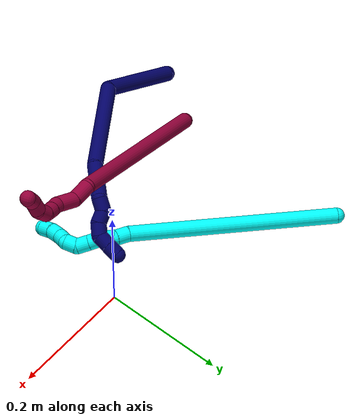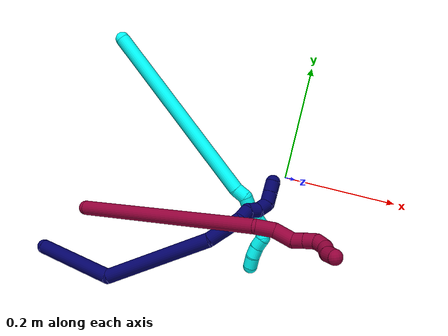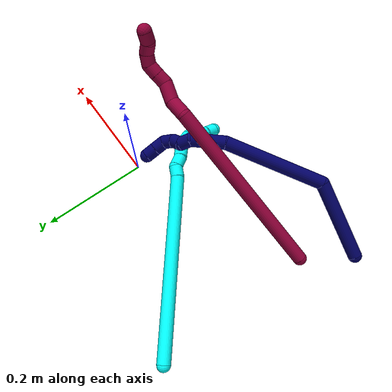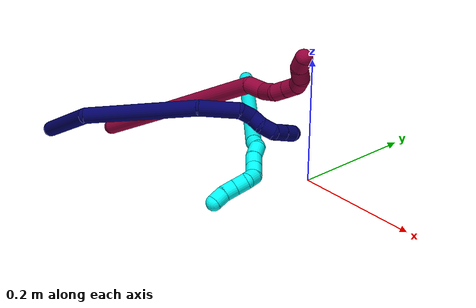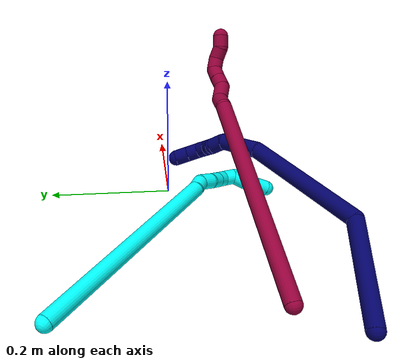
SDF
<sdf version="1.7">
 <world name="default">
  <model name="3">
   <static>0</static>
   <link name="3">
    <collision name="collision-cylinder-e_1_1_4">
     <pose>0.004202 -0.043896 0.161614 0.265214 0.025087 0.003346</pose>
     <geometry><cylinder><radius>0.0125</radius><length>0.335045</length></cylinder></geometry>
     <surface>
      <friction><ode><mu>1.16</mu><mu2>1.16</mu2><slip1>0</slip1><slip2>0</slip2></ode></friction>
      <contact><ode><kp>1e+06</kp><kd>1</kd><max_vel>0</max_vel><min_depth>0.001</min_depth></ode></contact>
     </surface>
    </collision>
    <visual name="visual-cylinder-e_1_1_4">
     <pose>0.004202 -0.043896 0.161614 0.265214 0.025087 0.003346</pose>
     <geometry><cylinder><radius>0.0125</radius><length>0.335045</length></cylinder></geometry>
     <material><ambient>0.003922 1 0.996078 1</ambient></material>
    </visual>
    <collision name="collision-cylinder-e_2_4_5">
     <pose>0.009357 -0.088173 0.33351 0.036997 0.092378 0.00171</pose>
     <geometry><cylinder><radius>0.0125</radius><length>0.020666</length></cylinder></geometry>
     <surface>
      <friction><ode><mu>1.16</mu><mu2>1.16</mu2><slip1>0</slip1><slip2>0</slip2></ode></friction>
      <contact><ode><kp>1e+06</kp><kd>1</kd><max_vel>0</max_vel><min_depth>0.001</min_depth></ode></contact>
     </surface>
    </collision>
    <visual name="visual-cylinder-e_2_4_5">
     <pose>0.009357 -0.088173 0.33351 0.036997 0.092378 0.00171</pose>
     <geometry><cylinder><radius>0.0125</radius><length>0.020666</length></cylinder></geometry>
     <material><ambient>0.003922 1 0.996078 1</ambient></material>
    </visual>
    <collision name="collision-cylinder-e_3_5_6">
     <pose>0.013859 -0.095132 0.353095 0.615528 0.301919 0.09663</pose>
     <geometry><cylinder><radius>0.0125</radius><length>0.023866</length></cylinder></geometry>
     <surface>
      <friction><ode><mu>1.16</mu><mu2>1.16</mu2><slip1>0</slip1><slip2>0</slip2></ode></friction>
      <contact><ode><kp>1e+06</kp><kd>1</kd><max_vel>0</max_vel><min_depth>0.001</min_depth></ode></contact>
     </surface>
    </collision>
    <visual name="visual-cylinder-e_3_5_6">
     <pose>0.013859 -0.095132 0.353095 0.615528 0.301919 0.09663</pose>
     <geometry><cylinder><radius>0.0125</radius><length>0.023866</length></cylinder></geometry>
     <material><ambient>0.003922 1 0.996078 1</ambient></material>
    </visual>
    <collision name="collision-cylinder-e_4_6_7">
     <pose>0.02161 -0.104902 0.371054 0.353176 0.427443 0.07742</pose>
     <geometry><cylinder><radius>0.0125</radius><length>0.020277</length></cylinder></geometry>
     <surface>
      <friction><ode><mu>1.16</mu><mu2>1.16</mu2><slip1>0</slip1><slip2>0</slip2></ode></friction>
      <contact><ode><kp>1e+06</kp><kd>1</kd><max_vel>0</max_vel><min_depth>0.001</min_depth></ode></contact>
     </surface>
    </collision>
    <visual name="visual-cylinder-e_4_6_7">
     <pose>0.02161 -0.104902 0.371054 0.353176 0.427443 0.07742</pose>
     <geometry><cylinder><radius>0.0125</radius><length>0.020277</length></cylinder></geometry>
     <material><ambient>0.003922 1 0.996078 1</ambient></material>
    </visual>
    <collision name="collision-cylinder-e_5_7_8">
     <pose>0.029818 -0.111386 0.388313 0.365614 0.410133 0.076865</pose>
     <geometry><cylinder><radius>0.0125</radius><length>0.020087</length></cylinder></geometry>
     <surface>
      <friction><ode><mu>1.16</mu><mu2>1.16</mu2><slip1>0</slip1><slip2>0</slip2></ode></friction>
      <contact><ode><kp>1e+06</kp><kd>1</kd><max_vel>0</max_vel><min_depth>0.001</min_depth></ode></contact>
     </surface>
    </collision>
    <visual name="visual-cylinder-e_5_7_8">
     <pose>0.029818 -0.111386 0.388313 0.365614 0.410133 0.076865</pose>
     <geometry><cylinder><radius>0.0125</radius><length>0.020087</length></cylinder></geometry>
     <material><ambient>0.003922 1 0.996078 1</ambient></material>
    </visual>
    <collision name="collision-cylinder-e_6_8_9">
     <pose>0.033579 -0.122455 0.403207 0.89043 -0.024336 -0.011613</pose>
     <geometry><cylinder><radius>0.0125</radius><length>0.020013</length></cylinder></geometry>
     <surface>
      <friction><ode><mu>1.16</mu><mu2>1.16</mu2><slip1>0</slip1><slip2>0</slip2></ode></friction>
      <contact><ode><kp>1e+06</kp><kd>1</kd><max_vel>0</max_vel><min_depth>0.001</min_depth></ode></contact>
     </surface>
    </collision>
    <visual name="visual-cylinder-e_6_8_9">
     <pose>0.033579 -0.122455 0.403207 0.89043 -0.024336 -0.011613</pose>
     <geometry><cylinder><radius>0.0125</radius><length>0.020013</length></cylinder></geometry>
     <material><ambient>0.003922 1 0.996078 1</ambient></material>
    </visual>
    <collision name="collision-cylinder-e_7_9_10">
     <pose>0.035977 -0.139899 0.409479 1.57296 0.266765 0.267335</pose>
     <geometry><cylinder><radius>0.0125</radius><length>0.020044</length></cylinder></geometry>
     <surface>
      <friction><ode><mu>1.16</mu><mu2>1.16</mu2><slip1>0</slip1><slip2>0</slip2></ode></friction>
      <contact><ode><kp>1e+06</kp><kd>1</kd><max_vel>0</max_vel><min_depth>0.001</min_depth></ode></contact>
     </surface>
    </collision>
    <visual name="visual-cylinder-e_7_9_10">
     <pose>0.035977 -0.139899 0.409479 1.57296 0.266765 0.267335</pose>
     <geometry><cylinder><radius>0.0125</radius><length>0.020044</length></cylinder></geometry>
     <material><ambient>0.003922 1 0.996078 1</ambient></material>
    </visual>
    <collision name="collision-cylinder-e_8_10_11">
     <pose>0.040339 -0.159169 0.411658 1.34562 0.172809 0.137826</pose>
     <geometry><cylinder><radius>0.0125</radius><length>0.02</length></cylinder></geometry>
     <surface>
      <friction><ode><mu>1.16</mu><mu2>1.16</mu2><slip1>0</slip1><slip2>0</slip2></ode></friction>
      <contact><ode><kp>1e+06</kp><kd>1</kd><max_vel>0</max_vel><min_depth>0.001</min_depth></ode></contact>
     </surface>
    </collision>
    <visual name="visual-cylinder-e_8_10_11">
     <pose>0.040339 -0.159169 0.411658 1.34562 0.172809 0.137826</pose>
     <geometry><cylinder><radius>0.0125</radius><length>0.02</length></cylinder></geometry>
     <material><ambient>0.003922 1 0.996078 1</ambient></material>
    </visual>
    <collision name="collision-cylinder-e_9_11_2">
     <pose>0.045454 -0.177603 0.417097 1.2192 0.346381 0.243128</pose>
     <geometry><cylinder><radius>0.0125</radius><length>0.020001</length></cylinder></geometry>
     <surface>
      <friction><ode><mu>1.16</mu><mu2>1.16</mu2><slip1>0</slip1><slip2>0</slip2></ode></friction>
      <contact><ode><kp>1e+06</kp><kd>1</kd><max_vel>0</max_vel><min_depth>0.001</min_depth></ode></contact>
     </surface>
    </collision>
    <visual name="visual-cylinder-e_9_11_2">
     <pose>0.045454 -0.177603 0.417097 1.2192 0.346381 0.243128</pose>
     <geometry><cylinder><radius>0.0125</radius><length>0.020001</length></cylinder></geometry>
     <material><ambient>0.003922 1 0.996078 1</ambient></material>
    </visual>
    <collision name="collision-sphere-2">
     <pose>0.048849 -0.186434 0.420337 0 -0 0</pose>
     <geometry><sphere><radius>0.0125</radius></sphere></geometry>
     <surface>
      <friction><ode><mu>1.16</mu><mu2>1.16</mu2><slip1>0</slip1><slip2>0</slip2></ode></friction>
      <contact><ode><kp>1e+06</kp><kd>1</kd><max_vel>0</max_vel><min_depth>0.001</min_depth></ode></contact>
     </surface>
    </collision>
    <visual name="visual-sphere-2">
     <pose>0.048849 -0.186434 0.420337 0 -0 0</pose>
     <geometry><sphere><radius>0.0125</radius></sphere></geometry>
     <material><ambient>0.003922 1 0.996078 1</ambient></material>
    </visual>
    <collision name="collision-sphere-11">
     <pose>0.042058 -0.168772 0.413858 0 -0 0</pose>
     <geometry><sphere><radius>0.0125</radius></sphere></geometry>
     <surface>
      <friction><ode><mu>1.16</mu><mu2>1.16</mu2><slip1>0</slip1><slip2>0</slip2></ode></friction>
      <contact><ode><kp>1e+06</kp><kd>1</kd><max_vel>0</max_vel><min_depth>0.001</min_depth></ode></contact>
     </surface>
    </collision>
    <visual name="visual-sphere-11">
     <pose>0.042058 -0.168772 0.413858 0 -0 0</pose>
     <geometry><sphere><radius>0.0125</radius></sphere></geometry>
     <material><ambient>0.003922 1 0.996078 1</ambient></material>
    </visual>
    <collision name="collision-sphere-10">
     <pose>0.038619 -0.149567 0.409459 0 -0 0</pose>
     <geometry><sphere><radius>0.0125</radius></sphere></geometry>
     <surface>
      <friction><ode><mu>1.16</mu><mu2>1.16</mu2><slip1>0</slip1><slip2>0</slip2></ode></friction>
      <contact><ode><kp>1e+06</kp><kd>1</kd><max_vel>0</max_vel><min_depth>0.001</min_depth></ode></contact>
     </surface>
    </collision>
    <visual name="visual-sphere-10">
     <pose>0.038619 -0.149567 0.409459 0 -0 0</pose>
     <geometry><sphere><radius>0.0125</radius></sphere></geometry>
     <material><ambient>0.003922 1 0.996078 1</ambient></material>
    </visual>
    <collision name="collision-sphere-9">
     <pose>0.033335 -0.130232 0.4095 0 -0 0</pose>
     <geometry><sphere><radius>0.0125</radius></sphere></geometry>
     <surface>
      <friction><ode><mu>1.16</mu><mu2>1.16</mu2><slip1>0</slip1><slip2>0</slip2></ode></friction>
      <contact><ode><kp>1e+06</kp><kd>1</kd><max_vel>0</max_vel><min_depth>0.001</min_depth></ode></contact>
     </surface>
    </collision>
    <visual name="visual-sphere-9">
     <pose>0.033335 -0.130232 0.4095 0 -0 0</pose>
     <geometry><sphere><radius>0.0125</radius></sphere></geometry>
     <material><ambient>0.003922 1 0.996078 1</ambient></material>
    </visual>
    <collision name="collision-sphere-4">
     <pose>0.008404 -0.087793 0.323229 0 -0 0</pose>
     <geometry><sphere><radius>0.0125</radius></sphere></geometry>
     <surface>
      <friction><ode><mu>1.16</mu><mu2>1.16</mu2><slip1>0</slip1><slip2>0</slip2></ode></friction>
      <contact><ode><kp>1e+06</kp><kd>1</kd><max_vel>0</max_vel><min_depth>0.001</min_depth></ode></contact>
     </surface>
    </collision>
    <visual name="visual-sphere-4">
     <pose>0.008404 -0.087793 0.323229 0 -0 0</pose>
     <geometry><sphere><radius>0.0125</radius></sphere></geometry>
     <material><ambient>0.003922 1 0.996078 1</ambient></material>
    </visual>
    <collision name="collision-sphere-1">
     <geometry><sphere><radius>0.0125</radius></sphere></geometry>
     <surface>
      <friction><ode><mu>1.16</mu><mu2>1.16</mu2><slip1>0</slip1><slip2>0</slip2></ode></friction>
      <contact><ode><kp>1e+06</kp><kd>1</kd><max_vel>0</max_vel><min_depth>0.001</min_depth></ode></contact>
     </surface>
    </collision>
    <visual name="visual-sphere-1">
     <geometry><sphere><radius>0.0125</radius></sphere></geometry>
     <material><ambient>0.003922 1 0.996078 1</ambient></material>
    </visual>
    <collision name="collision-sphere-8">
     <pose>0.033822 -0.114679 0.396914 0 -0 0</pose>
     <geometry><sphere><radius>0.0125</radius></sphere></geometry>
     <surface>
      <friction><ode><mu>1.16</mu><mu2>1.16</mu2><slip1>0</slip1><slip2>0</slip2></ode></friction>
      <contact><ode><kp>1e+06</kp><kd>1</kd><max_vel>0</max_vel><min_depth>0.001</min_depth></ode></contact>
     </surface>
    </collision>
    <visual name="visual-sphere-8">
     <pose>0.033822 -0.114679 0.396914 0 -0 0</pose>
     <geometry><sphere><radius>0.0125</radius></sphere></geometry>
     <material><ambient>0.003922 1 0.996078 1</ambient></material>
    </visual>
    <collision name="collision-sphere-5">
     <pose>0.010311 -0.088554 0.343792 0 -0 0</pose>
     <geometry><sphere><radius>0.0125</radius></sphere></geometry>
     <surface>
      <friction><ode><mu>1.16</mu><mu2>1.16</mu2><slip1>0</slip1><slip2>0</slip2></ode></friction>
      <contact><ode><kp>1e+06</kp><kd>1</kd><max_vel>0</max_vel><min_depth>0.001</min_depth></ode></contact>
     </surface>
    </collision>
    <visual name="visual-sphere-5">
     <pose>0.010311 -0.088554 0.343792 0 -0 0</pose>
     <geometry><sphere><radius>0.0125</radius></sphere></geometry>
     <material><ambient>0.003922 1 0.996078 1</ambient></material>
    </visual>
    <collision name="collision-sphere-6">
     <pose>0.017407 -0.101711 0.362397 0 -0 0</pose>
     <geometry><sphere><radius>0.0125</radius></sphere></geometry>
     <surface>
      <friction><ode><mu>1.16</mu><mu2>1.16</mu2><slip1>0</slip1><slip2>0</slip2></ode></friction>
      <contact><ode><kp>1e+06</kp><kd>1</kd><max_vel>0</max_vel><min_depth>0.001</min_depth></ode></contact>
     </surface>
    </collision>
    <visual name="visual-sphere-6">
     <pose>0.017407 -0.101711 0.362397 0 -0 0</pose>
     <geometry><sphere><radius>0.0125</radius></sphere></geometry>
     <material><ambient>0.003922 1 0.996078 1</ambient></material>
    </visual>
    <collision name="collision-sphere-7">
     <pose>0.025813 -0.108093 0.379711 0 -0 0</pose>
     <geometry><sphere><radius>0.0125</radius></sphere></geometry>
     <surface>
      <friction><ode><mu>1.16</mu><mu2>1.16</mu2><slip1>0</slip1><slip2>0</slip2></ode></friction>
      <contact><ode><kp>1e+06</kp><kd>1</kd><max_vel>0</max_vel><min_depth>0.001</min_depth></ode></contact>
     </surface>
    </collision>
    <visual name="visual-sphere-7">
     <pose>0.025813 -0.108093 0.379711 0 -0 0</pose>
     <geometry><sphere><radius>0.0125</radius></sphere></geometry>
     <material><ambient>0.003922 1 0.996078 1</ambient></material>
    </visual>
    <inertial>
     <pose>0.012157 -0.07031 0.235288 0 -0 0</pose>
     <mass>0.5</mass>
     <inertia>
      <ixx>0.003174</ixx>
      <ixy>0</ixy>
      <ixz>0</ixz>
      <iyy>0.003043</iyy>
      <iyz>0</iyz>
      <izz>0.000783</izz>
     </inertia>
    </inertial>
   </link>
   <pose>-0.339614 0.170526 0.012433 0.645011 1.35998 0.232861</pose>
  </model>
  <model name="7">
   <static>0</static>
   <link name="7">
    <collision name="collision-cylinder-e_1_1_4">
     <pose>0.065589 0.035701 -0.006542 -1.75204 1.06536 -1.23132</pose>
     <geometry><cylinder><radius>0.0125</radius><length>0.149924</length></cylinder></geometry>
     <surface>
      <friction><ode><mu>1.16</mu><mu2>1.16</mu2><slip1>0</slip1><slip2>0</slip2></ode></friction>
      <contact><ode><kp>1e+06</kp><kd>1</kd><max_vel>0</max_vel><min_depth>0.001</min_depth></ode></contact>
     </surface>
    </collision>
    <visual name="visual-cylinder-e_1_1_4">
     <pose>0.065589 0.035701 -0.006542 -1.75204 1.06536 -1.23132</pose>
     <geometry><cylinder><radius>0.0125</radius><length>0.149924</length></cylinder></geometry>
     <material><ambient>0.003922 0 0.403922 1</ambient></material>
    </visual>
    <collision name="collision-cylinder-e_2_4_5">
     <pose>0.18387 0.129787 0.036374 -0.867974 0.603045 -0.286302</pose>
     <geometry><cylinder><radius>0.0125</radius><length>0.185809</length></cylinder></geometry>
     <surface>
      <friction><ode><mu>1.16</mu><mu2>1.16</mu2><slip1>0</slip1><slip2>0</slip2></ode></friction>
      <contact><ode><kp>1e+06</kp><kd>1</kd><max_vel>0</max_vel><min_depth>0.001</min_depth></ode></contact>
     </surface>
    </collision>
    <visual name="visual-cylinder-e_2_4_5">
     <pose>0.18387 0.129787 0.036374 -0.867974 0.603045 -0.286302</pose>
     <geometry><cylinder><radius>0.0125</radius><length>0.185809</length></cylinder></geometry>
     <material><ambient>0.003922 0 0.403922 1</ambient></material>
    </visual>
    <collision name="collision-cylinder-e_3_5_6">
     <pose>0.245611 0.208435 0.107385 -0.754601 0.296908 -0.118394</pose>
     <geometry><cylinder><radius>0.0125</radius><length>0.061871</length></cylinder></geometry>
     <surface>
      <friction><ode><mu>1.16</mu><mu2>1.16</mu2><slip1>0</slip1><slip2>0</slip2></ode></friction>
      <contact><ode><kp>1e+06</kp><kd>1</kd><max_vel>0</max_vel><min_depth>0.001</min_depth></ode></contact>
     </surface>
    </collision>
    <visual name="visual-cylinder-e_3_5_6">
     <pose>0.245611 0.208435 0.107385 -0.754601 0.296908 -0.118394</pose>
     <geometry><cylinder><radius>0.0125</radius><length>0.061871</length></cylinder></geometry>
     <material><ambient>0.003922 0 0.403922 1</ambient></material>
    </visual>
    <collision name="collision-cylinder-e_4_6_7">
     <pose>0.251805 0.236074 0.136283 -0.787401 -0.26786 0.111819</pose>
     <geometry><cylinder><radius>0.0125</radius><length>0.02159</length></cylinder></geometry>
     <surface>
      <friction><ode><mu>1.16</mu><mu2>1.16</mu2><slip1>0</slip1><slip2>0</slip2></ode></friction>
      <contact><ode><kp>1e+06</kp><kd>1</kd><max_vel>0</max_vel><min_depth>0.001</min_depth></ode></contact>
     </surface>
    </collision>
    <visual name="visual-cylinder-e_4_6_7">
     <pose>0.251805 0.236074 0.136283 -0.787401 -0.26786 0.111819</pose>
     <geometry><cylinder><radius>0.0125</radius><length>0.02159</length></cylinder></geometry>
     <material><ambient>0.003922 0 0.403922 1</ambient></material>
    </visual>
    <collision name="collision-cylinder-e_5_7_8">
     <pose>0.249161 0.253354 0.145228 -1.41071 0.021207 -0.018058</pose>
     <geometry><cylinder><radius>0.0125</radius><length>0.02007</length></cylinder></geometry>
     <surface>
      <friction><ode><mu>1.16</mu><mu2>1.16</mu2><slip1>0</slip1><slip2>0</slip2></ode></friction>
      <contact><ode><kp>1e+06</kp><kd>1</kd><max_vel>0</max_vel><min_depth>0.001</min_depth></ode></contact>
     </surface>
    </collision>
    <visual name="visual-cylinder-e_5_7_8">
     <pose>0.249161 0.253354 0.145228 -1.41071 0.021207 -0.018058</pose>
     <geometry><cylinder><radius>0.0125</radius><length>0.02007</length></cylinder></geometry>
     <material><ambient>0.003922 0 0.403922 1</ambient></material>
    </visual>
    <collision name="collision-cylinder-e_6_8_9">
     <pose>0.248193 0.271587 0.152624 -0.962767 -0.115761 0.060519</pose>
     <geometry><cylinder><radius>0.0125</radius><length>0.020431</length></cylinder></geometry>
     <surface>
      <friction><ode><mu>1.16</mu><mu2>1.16</mu2><slip1>0</slip1><slip2>0</slip2></ode></friction>
      <contact><ode><kp>1e+06</kp><kd>1</kd><max_vel>0</max_vel><min_depth>0.001</min_depth></ode></contact>
     </surface>
    </collision>
    <visual name="visual-cylinder-e_6_8_9">
     <pose>0.248193 0.271587 0.152624 -0.962767 -0.115761 0.060519</pose>
     <geometry><cylinder><radius>0.0125</radius><length>0.020431</length></cylinder></geometry>
     <material><ambient>0.003922 0 0.403922 1</ambient></material>
    </visual>
    <collision name="collision-cylinder-e_7_9_10">
     <pose>0.244066 0.2827 0.16771 -0.291215 -0.295083 0.043582</pose>
     <geometry><cylinder><radius>0.0125</radius><length>0.020272</length></cylinder></geometry>
     <surface>
      <friction><ode><mu>1.16</mu><mu2>1.16</mu2><slip1>0</slip1><slip2>0</slip2></ode></friction>
      <contact><ode><kp>1e+06</kp><kd>1</kd><max_vel>0</max_vel><min_depth>0.001</min_depth></ode></contact>
     </surface>
    </collision>
    <visual name="visual-cylinder-e_7_9_10">
     <pose>0.244066 0.2827 0.16771 -0.291215 -0.295083 0.043582</pose>
     <geometry><cylinder><radius>0.0125</radius><length>0.020272</length></cylinder></geometry>
     <material><ambient>0.003922 0 0.403922 1</ambient></material>
    </visual>
    <collision name="collision-cylinder-e_8_10_2">
     <pose>0.238168 0.288258 0.186161 -0.293944 -0.298996 0.044588</pose>
     <geometry><cylinder><radius>0.0125</radius><length>0.020032</length></cylinder></geometry>
     <surface>
      <friction><ode><mu>1.16</mu><mu2>1.16</mu2><slip1>0</slip1><slip2>0</slip2></ode></friction>
      <contact><ode><kp>1e+06</kp><kd>1</kd><max_vel>0</max_vel><min_depth>0.001</min_depth></ode></contact>
     </surface>
    </collision>
    <visual name="visual-cylinder-e_8_10_2">
     <pose>0.238168 0.288258 0.186161 -0.293944 -0.298996 0.044588</pose>
     <geometry><cylinder><radius>0.0125</radius><length>0.020032</length></cylinder></geometry>
     <material><ambient>0.003922 0 0.403922 1</ambient></material>
    </visual>
    <collision name="collision-sphere-2">
     <pose>0.235217 0.291031 0.195322 0 -0 0</pose>
     <geometry><sphere><radius>0.0125</radius></sphere></geometry>
     <surface>
      <friction><ode><mu>1.16</mu><mu2>1.16</mu2><slip1>0</slip1><slip2>0</slip2></ode></friction>
      <contact><ode><kp>1e+06</kp><kd>1</kd><max_vel>0</max_vel><min_depth>0.001</min_depth></ode></contact>
     </surface>
    </collision>
    <visual name="visual-sphere-2">
     <pose>0.235217 0.291031 0.195322 0 -0 0</pose>
     <geometry><sphere><radius>0.0125</radius></sphere></geometry>
     <material><ambient>0.003922 0 0.403922 1</ambient></material>
    </visual>
    <collision name="collision-sphere-10">
     <pose>0.241118 0.285485 0.177 0 -0 0</pose>
     <geometry><sphere><radius>0.0125</radius></sphere></geometry>
     <surface>
      <friction><ode><mu>1.16</mu><mu2>1.16</mu2><slip1>0</slip1><slip2>0</slip2></ode></friction>
      <contact><ode><kp>1e+06</kp><kd>1</kd><max_vel>0</max_vel><min_depth>0.001</min_depth></ode></contact>
     </surface>
    </collision>
    <visual name="visual-sphere-10">
     <pose>0.241118 0.285485 0.177 0 -0 0</pose>
     <geometry><sphere><radius>0.0125</radius></sphere></geometry>
     <material><ambient>0.003922 0 0.403922 1</ambient></material>
    </visual>
    <collision name="collision-sphere-9">
     <pose>0.247013 0.279916 0.158421 0 -0 0</pose>
     <geometry><sphere><radius>0.0125</radius></sphere></geometry>
     <surface>
      <friction><ode><mu>1.16</mu><mu2>1.16</mu2><slip1>0</slip1><slip2>0</slip2></ode></friction>
      <contact><ode><kp>1e+06</kp><kd>1</kd><max_vel>0</max_vel><min_depth>0.001</min_depth></ode></contact>
     </surface>
    </collision>
    <visual name="visual-sphere-9">
     <pose>0.247013 0.279916 0.158421 0 -0 0</pose>
     <geometry><sphere><radius>0.0125</radius></sphere></geometry>
     <material><ambient>0.003922 0 0.403922 1</ambient></material>
    </visual>
    <collision name="collision-sphere-4">
     <pose>0.131178 0.071402 -0.013085 0 -0 0</pose>
     <geometry><sphere><radius>0.0125</radius></sphere></geometry>
     <surface>
      <friction><ode><mu>1.16</mu><mu2>1.16</mu2><slip1>0</slip1><slip2>0</slip2></ode></friction>
      <contact><ode><kp>1e+06</kp><kd>1</kd><max_vel>0</max_vel><min_depth>0.001</min_depth></ode></contact>
     </surface>
    </collision>
    <visual name="visual-sphere-4">
     <pose>0.131178 0.071402 -0.013085 0 -0 0</pose>
     <geometry><sphere><radius>0.0125</radius></sphere></geometry>
     <material><ambient>0.003922 0 0.403922 1</ambient></material>
    </visual>
    <collision name="collision-sphere-1">
     <geometry><sphere><radius>0.0125</radius></sphere></geometry>
     <surface>
      <friction><ode><mu>1.16</mu><mu2>1.16</mu2><slip1>0</slip1><slip2>0</slip2></ode></friction>
      <contact><ode><kp>1e+06</kp><kd>1</kd><max_vel>0</max_vel><min_depth>0.001</min_depth></ode></contact>
     </surface>
    </collision>
    <visual name="visual-sphere-1">
     <geometry><sphere><radius>0.0125</radius></sphere></geometry>
     <material><ambient>0.003922 0 0.403922 1</ambient></material>
    </visual>
    <collision name="collision-sphere-8">
     <pose>0.249373 0.263259 0.146828 0 -0 0</pose>
     <geometry><sphere><radius>0.0125</radius></sphere></geometry>
     <surface>
      <friction><ode><mu>1.16</mu><mu2>1.16</mu2><slip1>0</slip1><slip2>0</slip2></ode></friction>
      <contact><ode><kp>1e+06</kp><kd>1</kd><max_vel>0</max_vel><min_depth>0.001</min_depth></ode></contact>
     </surface>
    </collision>
    <visual name="visual-sphere-8">
     <pose>0.249373 0.263259 0.146828 0 -0 0</pose>
     <geometry><sphere><radius>0.0125</radius></sphere></geometry>
     <material><ambient>0.003922 0 0.403922 1</ambient></material>
    </visual>
    <collision name="collision-sphere-5">
     <pose>0.236561 0.188171 0.085833 0 -0 0</pose>
     <geometry><sphere><radius>0.0125</radius></sphere></geometry>
     <surface>
      <friction><ode><mu>1.16</mu><mu2>1.16</mu2><slip1>0</slip1><slip2>0</slip2></ode></friction>
      <contact><ode><kp>1e+06</kp><kd>1</kd><max_vel>0</max_vel><min_depth>0.001</min_depth></ode></contact>
     </surface>
    </collision>
    <visual name="visual-sphere-5">
     <pose>0.236561 0.188171 0.085833 0 -0 0</pose>
     <geometry><sphere><radius>0.0125</radius></sphere></geometry>
     <material><ambient>0.003922 0 0.403922 1</ambient></material>
    </visual>
    <collision name="collision-sphere-6">
     <pose>0.254662 0.228698 0.128936 0 -0 0</pose>
     <geometry><sphere><radius>0.0125</radius></sphere></geometry>
     <surface>
      <friction><ode><mu>1.16</mu><mu2>1.16</mu2><slip1>0</slip1><slip2>0</slip2></ode></friction>
      <contact><ode><kp>1e+06</kp><kd>1</kd><max_vel>0</max_vel><min_depth>0.001</min_depth></ode></contact>
     </surface>
    </collision>
    <visual name="visual-sphere-6">
     <pose>0.254662 0.228698 0.128936 0 -0 0</pose>
     <geometry><sphere><radius>0.0125</radius></sphere></geometry>
     <material><ambient>0.003922 0 0.403922 1</ambient></material>
    </visual>
    <collision name="collision-sphere-7">
     <pose>0.248948 0.24345 0.143629 0 -0 0</pose>
     <geometry><sphere><radius>0.0125</radius></sphere></geometry>
     <surface>
      <friction><ode><mu>1.16</mu><mu2>1.16</mu2><slip1>0</slip1><slip2>0</slip2></ode></friction>
      <contact><ode><kp>1e+06</kp><kd>1</kd><max_vel>0</max_vel><min_depth>0.001</min_depth></ode></contact>
     </surface>
    </collision>
    <visual name="visual-sphere-7">
     <pose>0.248948 0.24345 0.143629 0 -0 0</pose>
     <geometry><sphere><radius>0.0125</radius></sphere></geometry>
     <material><ambient>0.003922 0 0.403922 1</ambient></material>
    </visual>
    <inertial>
     <pose>0.168842 0.1392 0.057052 0 -0 0</pose>
     <mass>0.5</mass>
     <inertia>
      <ixx>0.000262</ixx>
      <ixy>0</ixy>
      <ixz>0</ixz>
      <iyy>0.000403</iyy>
      <iyz>0</iyz>
      <izz>-0.001044</izz>
     </inertia>
    </inertial>
   </link>
   <pose>-0.386705 -0.219967 0.013893 -1.45664 -1.02173 -0.055593</pose>
  </model>
  <model name="8">
   <static>0</static>
   <link name="8">
    <collision name="collision-cylinder-e_1_1_4">
     <pose>0.157721 0.044851 0.031609 -0.956886 1.236 -0.706458</pose>
     <geometry><cylinder><radius>0.0125</radius><length>0.333987</length></cylinder></geometry>
     <surface>
      <friction><ode><mu>1.16</mu><mu2>1.16</mu2><slip1>0</slip1><slip2>0</slip2></ode></friction>
      <contact><ode><kp>1e+06</kp><kd>1</kd><max_vel>0</max_vel><min_depth>0.001</min_depth></ode></contact>
     </surface>
    </collision>
    <visual name="visual-cylinder-e_1_1_4">
     <pose>0.157721 0.044851 0.031609 -0.956886 1.236 -0.706458</pose>
     <geometry><cylinder><radius>0.0125</radius><length>0.333987</length></cylinder></geometry>
     <material><ambient>0.584314 0 0.227451 1</ambient></material>
    </visual>
    <collision name="collision-cylinder-e_2_4_5">
     <pose>0.330198 0.086154 0.068013 0.637108 1.18663 0.437669</pose>
     <geometry><cylinder><radius>0.0125</radius><length>0.031832</length></cylinder></geometry>
     <surface>
      <friction><ode><mu>1.16</mu><mu2>1.16</mu2><slip1>0</slip1><slip2>0</slip2></ode></friction>
      <contact><ode><kp>1e+06</kp><kd>1</kd><max_vel>0</max_vel><min_depth>0.001</min_depth></ode></contact>
     </surface>
    </collision>
    <visual name="visual-cylinder-e_2_4_5">
     <pose>0.330198 0.086154 0.068013 0.637108 1.18663 0.437669</pose>
     <geometry><cylinder><radius>0.0125</radius><length>0.031832</length></cylinder></geometry>
     <material><ambient>0.584314 0 0.227451 1</ambient></material>
    </visual>
    <collision name="collision-cylinder-e_3_5_6">
     <pose>0.35892 0.084726 0.082352 -0.218637 0.960051 -0.114163</pose>
     <geometry><cylinder><radius>0.0125</radius><length>0.034096</length></cylinder></geometry>
     <surface>
      <friction><ode><mu>1.16</mu><mu2>1.16</mu2><slip1>0</slip1><slip2>0</slip2></ode></friction>
      <contact><ode><kp>1e+06</kp><kd>1</kd><max_vel>0</max_vel><min_depth>0.001</min_depth></ode></contact>
     </surface>
    </collision>
    <visual name="visual-cylinder-e_3_5_6">
     <pose>0.35892 0.084726 0.082352 -0.218637 0.960051 -0.114163</pose>
     <geometry><cylinder><radius>0.0125</radius><length>0.034096</length></cylinder></geometry>
     <material><ambient>0.584314 0 0.227451 1</ambient></material>
    </visual>
    <collision name="collision-cylinder-e_4_6_7">
     <pose>0.382517 0.089544 0.092781 -1.25377 1.28417 -0.992836</pose>
     <geometry><cylinder><radius>0.0125</radius><length>0.02008</length></cylinder></geometry>
     <surface>
      <friction><ode><mu>1.16</mu><mu2>1.16</mu2><slip1>0</slip1><slip2>0</slip2></ode></friction>
      <contact><ode><kp>1e+06</kp><kd>1</kd><max_vel>0</max_vel><min_depth>0.001</min_depth></ode></contact>
     </surface>
    </collision>
    <visual name="visual-cylinder-e_4_6_7">
     <pose>0.382517 0.089544 0.092781 -1.25377 1.28417 -0.992836</pose>
     <geometry><cylinder><radius>0.0125</radius><length>0.02008</length></cylinder></geometry>
     <material><ambient>0.584314 0 0.227451 1</ambient></material>
    </visual>
    <collision name="collision-cylinder-e_5_7_8">
     <pose>0.401615 0.095142 0.095072 -1.11942 1.24262 -0.843268</pose>
     <geometry><cylinder><radius>0.0125</radius><length>0.020003</length></cylinder></geometry>
     <surface>
      <friction><ode><mu>1.16</mu><mu2>1.16</mu2><slip1>0</slip1><slip2>0</slip2></ode></friction>
      <contact><ode><kp>1e+06</kp><kd>1</kd><max_vel>0</max_vel><min_depth>0.001</min_depth></ode></contact>
     </surface>
    </collision>
    <visual name="visual-cylinder-e_5_7_8">
     <pose>0.401615 0.095142 0.095072 -1.11942 1.24262 -0.843268</pose>
     <geometry><cylinder><radius>0.0125</radius><length>0.020003</length></cylinder></geometry>
     <material><ambient>0.584314 0 0.227451 1</ambient></material>
    </visual>
    <collision name="collision-cylinder-e_6_8_9">
     <pose>0.417323 0.104334 0.101113 -0.935821 0.673875 -0.350406</pose>
     <geometry><cylinder><radius>0.0125</radius><length>0.02</length></cylinder></geometry>
     <surface>
      <friction><ode><mu>1.16</mu><mu2>1.16</mu2><slip1>0</slip1><slip2>0</slip2></ode></friction>
      <contact><ode><kp>1e+06</kp><kd>1</kd><max_vel>0</max_vel><min_depth>0.001</min_depth></ode></contact>
     </surface>
    </collision>
    <visual name="visual-cylinder-e_6_8_9">
     <pose>0.417323 0.104334 0.101113 -0.935821 0.673875 -0.350406</pose>
     <geometry><cylinder><radius>0.0125</radius><length>0.02</length></cylinder></geometry>
     <material><ambient>0.584314 0 0.227451 1</ambient></material>
    </visual>
    <collision name="collision-cylinder-e_7_9_10">
     <pose>0.425567 0.119386 0.110134 -1.10668 0.201815 -0.124926</pose>
     <geometry><cylinder><radius>0.0125</radius><length>0.020001</length></cylinder></geometry>
     <surface>
      <friction><ode><mu>1.16</mu><mu2>1.16</mu2><slip1>0</slip1><slip2>0</slip2></ode></friction>
      <contact><ode><kp>1e+06</kp><kd>1</kd><max_vel>0</max_vel><min_depth>0.001</min_depth></ode></contact>
     </surface>
    </collision>
    <visual name="visual-cylinder-e_7_9_10">
     <pose>0.425567 0.119386 0.110134 -1.10668 0.201815 -0.124926</pose>
     <geometry><cylinder><radius>0.0125</radius><length>0.020001</length></cylinder></geometry>
     <material><ambient>0.584314 0 0.227451 1</ambient></material>
    </visual>
    <collision name="collision-cylinder-e_8_10_2">
     <pose>0.433567 0.135741 0.117052 -1.24887 0.64279 -0.470947</pose>
     <geometry><cylinder><radius>0.0125</radius><length>0.020001</length></cylinder></geometry>
     <surface>
      <friction><ode><mu>1.16</mu><mu2>1.16</mu2><slip1>0</slip1><slip2>0</slip2></ode></friction>
      <contact><ode><kp>1e+06</kp><kd>1</kd><max_vel>0</max_vel><min_depth>0.001</min_depth></ode></contact>
     </surface>
    </collision>
    <visual name="visual-cylinder-e_8_10_2">
     <pose>0.433567 0.135741 0.117052 -1.24887 0.64279 -0.470947</pose>
     <geometry><cylinder><radius>0.0125</radius><length>0.020001</length></cylinder></geometry>
     <material><ambient>0.584314 0 0.227451 1</ambient></material>
    </visual>
    <collision name="collision-sphere-2">
     <pose>0.439561 0.143334 0.119585 0 -0 0</pose>
     <geometry><sphere><radius>0.0125</radius></sphere></geometry>
     <surface>
      <friction><ode><mu>1.16</mu><mu2>1.16</mu2><slip1>0</slip1><slip2>0</slip2></ode></friction>
      <contact><ode><kp>1e+06</kp><kd>1</kd><max_vel>0</max_vel><min_depth>0.001</min_depth></ode></contact>
     </surface>
    </collision>
    <visual name="visual-sphere-2">
     <pose>0.439561 0.143334 0.119585 0 -0 0</pose>
     <geometry><sphere><radius>0.0125</radius></sphere></geometry>
     <material><ambient>0.584314 0 0.227451 1</ambient></material>
    </visual>
    <collision name="collision-sphere-10">
     <pose>0.427572 0.128147 0.11452 0 -0 0</pose>
     <geometry><sphere><radius>0.0125</radius></sphere></geometry>
     <surface>
      <friction><ode><mu>1.16</mu><mu2>1.16</mu2><slip1>0</slip1><slip2>0</slip2></ode></friction>
      <contact><ode><kp>1e+06</kp><kd>1</kd><max_vel>0</max_vel><min_depth>0.001</min_depth></ode></contact>
     </surface>
    </collision>
    <visual name="visual-sphere-10">
     <pose>0.427572 0.128147 0.11452 0 -0 0</pose>
     <geometry><sphere><radius>0.0125</radius></sphere></geometry>
     <material><ambient>0.584314 0 0.227451 1</ambient></material>
    </visual>
    <collision name="collision-sphere-9">
     <pose>0.423563 0.110625 0.105748 0 -0 0</pose>
     <geometry><sphere><radius>0.0125</radius></sphere></geometry>
     <surface>
      <friction><ode><mu>1.16</mu><mu2>1.16</mu2><slip1>0</slip1><slip2>0</slip2></ode></friction>
      <contact><ode><kp>1e+06</kp><kd>1</kd><max_vel>0</max_vel><min_depth>0.001</min_depth></ode></contact>
     </surface>
    </collision>
    <visual name="visual-sphere-9">
     <pose>0.423563 0.110625 0.105748 0 -0 0</pose>
     <geometry><sphere><radius>0.0125</radius></sphere></geometry>
     <material><ambient>0.584314 0 0.227451 1</ambient></material>
    </visual>
    <collision name="collision-sphere-4">
     <pose>0.315442 0.089703 0.063218 0 -0 0</pose>
     <geometry><sphere><radius>0.0125</radius></sphere></geometry>
     <surface>
      <friction><ode><mu>1.16</mu><mu2>1.16</mu2><slip1>0</slip1><slip2>0</slip2></ode></friction>
      <contact><ode><kp>1e+06</kp><kd>1</kd><max_vel>0</max_vel><min_depth>0.001</min_depth></ode></contact>
     </surface>
    </collision>
    <visual name="visual-sphere-4">
     <pose>0.315442 0.089703 0.063218 0 -0 0</pose>
     <geometry><sphere><radius>0.0125</radius></sphere></geometry>
     <material><ambient>0.584314 0 0.227451 1</ambient></material>
    </visual>
    <collision name="collision-sphere-1">
     <geometry><sphere><radius>0.0125</radius></sphere></geometry>
     <surface>
      <friction><ode><mu>1.16</mu><mu2>1.16</mu2><slip1>0</slip1><slip2>0</slip2></ode></friction>
      <contact><ode><kp>1e+06</kp><kd>1</kd><max_vel>0</max_vel><min_depth>0.001</min_depth></ode></contact>
     </surface>
    </collision>
    <visual name="visual-sphere-1">
     <geometry><sphere><radius>0.0125</radius></sphere></geometry>
     <material><ambient>0.584314 0 0.227451 1</ambient></material>
    </visual>
    <collision name="collision-sphere-8">
     <pose>0.411082 0.098042 0.096478 0 -0 0</pose>
     <geometry><sphere><radius>0.0125</radius></sphere></geometry>
     <surface>
      <friction><ode><mu>1.16</mu><mu2>1.16</mu2><slip1>0</slip1><slip2>0</slip2></ode></friction>
      <contact><ode><kp>1e+06</kp><kd>1</kd><max_vel>0</max_vel><min_depth>0.001</min_depth></ode></contact>
     </surface>
    </collision>
    <visual name="visual-sphere-8">
     <pose>0.411082 0.098042 0.096478 0 -0 0</pose>
     <geometry><sphere><radius>0.0125</radius></sphere></geometry>
     <material><ambient>0.584314 0 0.227451 1</ambient></material>
    </visual>
    <collision name="collision-sphere-5">
     <pose>0.344954 0.082606 0.072808 0 -0 0</pose>
     <geometry><sphere><radius>0.0125</radius></sphere></geometry>
     <surface>
      <friction><ode><mu>1.16</mu><mu2>1.16</mu2><slip1>0</slip1><slip2>0</slip2></ode></friction>
      <contact><ode><kp>1e+06</kp><kd>1</kd><max_vel>0</max_vel><min_depth>0.001</min_depth></ode></contact>
     </surface>
    </collision>
    <visual name="visual-sphere-5">
     <pose>0.344954 0.082606 0.072808 0 -0 0</pose>
     <geometry><sphere><radius>0.0125</radius></sphere></geometry>
     <material><ambient>0.584314 0 0.227451 1</ambient></material>
    </visual>
    <collision name="collision-sphere-6">
     <pose>0.372886 0.086847 0.091896 0 -0 0</pose>
     <geometry><sphere><radius>0.0125</radius></sphere></geometry>
     <surface>
      <friction><ode><mu>1.16</mu><mu2>1.16</mu2><slip1>0</slip1><slip2>0</slip2></ode></friction>
      <contact><ode><kp>1e+06</kp><kd>1</kd><max_vel>0</max_vel><min_depth>0.001</min_depth></ode></contact>
     </surface>
    </collision>
    <visual name="visual-sphere-6">
     <pose>0.372886 0.086847 0.091896 0 -0 0</pose>
     <geometry><sphere><radius>0.0125</radius></sphere></geometry>
     <material><ambient>0.584314 0 0.227451 1</ambient></material>
    </visual>
    <collision name="collision-sphere-7">
     <pose>0.392147 0.092241 0.093666 0 -0 0</pose>
     <geometry><sphere><radius>0.0125</radius></sphere></geometry>
     <surface>
      <friction><ode><mu>1.16</mu><mu2>1.16</mu2><slip1>0</slip1><slip2>0</slip2></ode></friction>
      <contact><ode><kp>1e+06</kp><kd>1</kd><max_vel>0</max_vel><min_depth>0.001</min_depth></ode></contact>
     </surface>
    </collision>
    <visual name="visual-sphere-7">
     <pose>0.392147 0.092241 0.093666 0 -0 0</pose>
     <geometry><sphere><radius>0.0125</radius></sphere></geometry>
     <material><ambient>0.584314 0 0.227451 1</ambient></material>
    </visual>
    <inertial>
     <pose>0.23334 0.063003 0.051722 0 -0 0</pose>
     <mass>0.5</mass>
     <inertia>
      <ixx>0.000155</ixx>
      <ixy>0</ixy>
      <ixz>0</ixz>
      <iyy>0.002287</iyy>
      <iyz>0</iyz>
      <izz>-0.003789</izz>
     </inertia>
    </inertial>
   </link>
   <pose>-0.331539 -0.135732 0.012438 1.5175 -0.214502 0.36868</pose>
  </model>
 </world>
</sdf>
